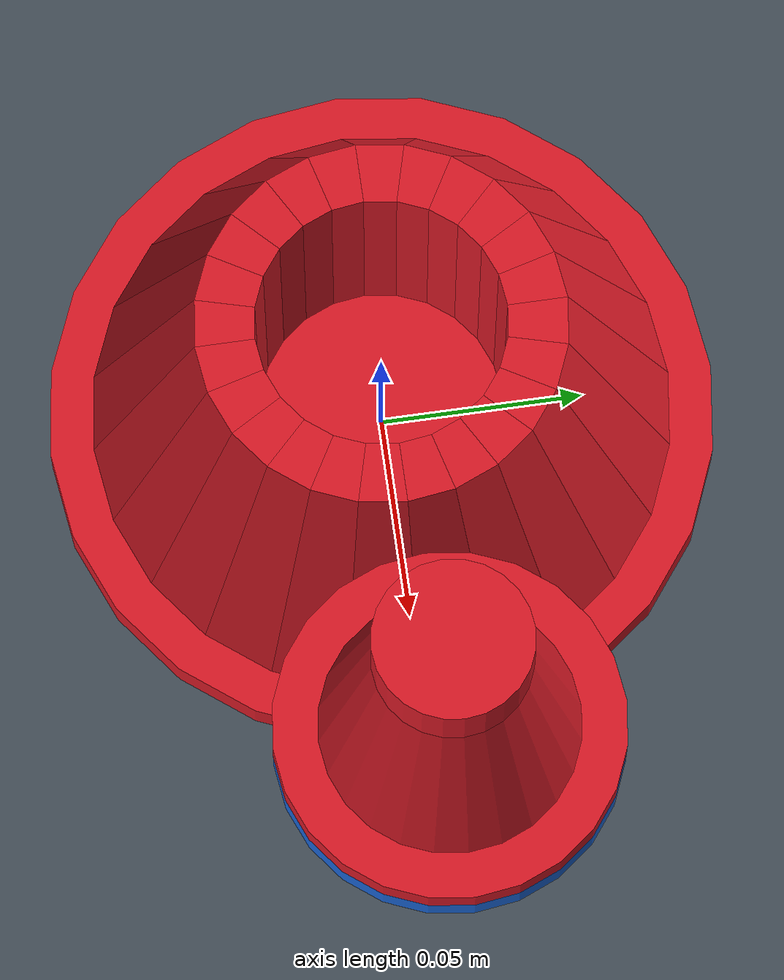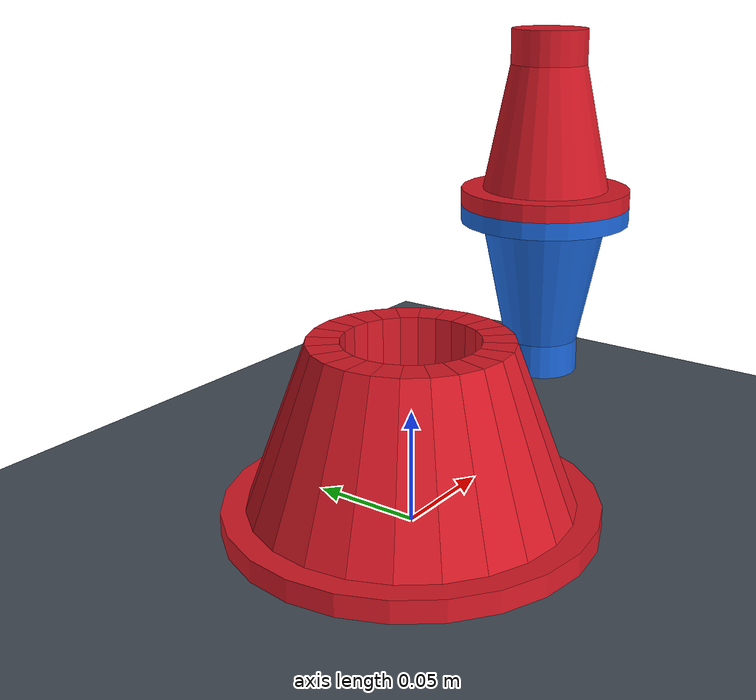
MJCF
<mujoco model="override_contact_fixture"><compiler angle="radian" /><option timestep=".002" gravity="0 0 -9.81" integrator="implicitfast" cone="elliptic" iterations="80" /><default><geom friction=".65 .002 .0001" solref=".01 1" /></default><visual><global offwidth="1200" offheight="900" /><headlight ambient=".5 .5 .5" diffuse=".7 .7 .7" /></visual><asset><mesh name="goal_wall_0" vertex="0.07125 0.0 0.01 0.06882221512309611 0.018440856963554603 0.01 0.03005 0.0 0.01 0.029026071079986504 0.007777512305330748 0.01 0.0444 0.0 0.0825 0.04288710668723463 0.011491565602551922 0.0825 0.03005 0.0 0.0825 0.029026071079986504 0.007777512305330748 0.0825" /><mesh name="goal_wall_1" vertex="0.06882221512309611 0.018440856963554603 0.01 0.06170431001964125 0.03562499999999999 0.01 0.029026071079986504 0.007777512305330748 0.01 0.026024063383722384 0.015024999999999998 0.01 0.04288710668723463 0.011491565602551922 0.0825 0.03845152792802908 0.022199999999999998 0.0825 0.029026071079986504 0.007777512305330748 0.0825 0.026024063383722384 0.015024999999999998 0.0825" /><mesh name="goal_wall_2" vertex="0.06170431001964125 0.03562499999999999 0.01 0.05038135815954151 0.0503813581595415 0.01 0.026024063383722384 0.015024999999999998 0.01 0.021248558774655753 0.02124855877465575 0.01 0.03845152792802908 0.022199999999999998 0.0825 0.03139554108468271 0.03139554108468271 0.0825 0.026024063383722384 0.015024999999999998 0.0825 0.021248558774655753 0.02124855877465575 0.0825" /><mesh name="goal_wall_3" vertex="0.05038135815954151 0.0503813581595415 0.01 0.035625000000000004 0.061704310019641245 0.01 0.021248558774655753 0.02124855877465575 0.01 0.015025000000000004 0.02602406338372238 0.01 0.03139554108468271 0.03139554108468271 0.0825 0.022200000000000004 0.038451527928029076 0.0825 0.021248558774655753 0.02124855877465575 0.0825 0.015025000000000004 0.02602406338372238 0.0825" /><mesh name="goal_wall_4" vertex="0.035625000000000004 0.061704310019641245 0.01 0.018440856963554603 0.06882221512309611 0.01 0.015025000000000004 0.02602406338372238 0.01 0.007777512305330748 0.029026071079986504 0.01 0.022200000000000004 0.038451527928029076 0.0825 0.011491565602551922 0.04288710668723463 0.0825 0.015025000000000004 0.02602406338372238 0.0825 0.007777512305330748 0.029026071079986504 0.0825" /><mesh name="goal_wall_5" vertex="0.018440856963554603 0.06882221512309611 0.01 4.362804221962445e-18 0.07125 0.01 0.007777512305330748 0.029026071079986504 0.01 1.8400318157188982e-18 0.03005 0.01 0.011491565602551922 0.04288710668723463 0.0825 2.718715894107124e-18 0.0444 0.0825 0.007777512305330748 0.029026071079986504 0.0825 1.8400318157188982e-18 0.03005 0.0825" /><mesh name="goal_wall_6" vertex="4.362804221962445e-18 0.07125 0.01 -0.018440856963554592 0.06882221512309611 0.01 1.8400318157188982e-18 0.03005 0.01 -0.007777512305330745 0.029026071079986504 0.01 2.718715894107124e-18 0.0444 0.0825 -0.011491565602551917 0.04288710668723463 0.0825 1.8400318157188982e-18 0.03005 0.0825 -0.007777512305330745 0.029026071079986504 0.0825" /><mesh name="goal_wall_7" vertex="-0.018440856963554592 0.06882221512309611 0.01 -0.03562499999999998 0.06170431001964125 0.01 -0.007777512305330745 0.029026071079986504 0.01 -0.015024999999999995 0.026024063383722384 0.01 -0.011491565602551917 0.04288710668723463 0.0825 -0.022199999999999994 0.03845152792802908 0.0825 -0.007777512305330745 0.029026071079986504 0.0825 -0.015024999999999995 0.026024063383722384 0.0825" /><mesh name="goal_wall_8" vertex="-0.03562499999999998 0.06170431001964125 0.01 -0.0503813581595415 0.05038135815954151 0.01 -0.015024999999999995 0.026024063383722384 0.01 -0.02124855877465575 0.021248558774655753 0.01 -0.022199999999999994 0.03845152792802908 0.0825 -0.03139554108468271 0.03139554108468271 0.0825 -0.015024999999999995 0.026024063383722384 0.0825 -0.02124855877465575 0.021248558774655753 0.0825" /><mesh name="goal_wall_9" vertex="-0.0503813581595415 0.05038135815954151 0.01 -0.06170431001964125 0.03562499999999999 0.01 -0.02124855877465575 0.021248558774655753 0.01 -0.026024063383722384 0.015024999999999998 0.01 -0.03139554108468271 0.03139554108468271 0.0825 -0.03845152792802908 0.022199999999999998 0.0825 -0.02124855877465575 0.021248558774655753 0.0825 -0.026024063383722384 0.015024999999999998 0.0825" /><mesh name="goal_wall_10" vertex="-0.06170431001964125 0.03562499999999999 0.01 -0.06882221512309611 0.01844085696355462 0.01 -0.026024063383722384 0.015024999999999998 0.01 -0.0290260710799865 0.007777512305330757 0.01 -0.03845152792802908 0.022199999999999998 0.0825 -0.04288710668723463 0.011491565602551934 0.0825 -0.026024063383722384 0.015024999999999998 0.0825 -0.0290260710799865 0.007777512305330757 0.0825" /><mesh name="goal_wall_11" vertex="-0.06882221512309611 0.01844085696355462 0.01 -0.07125 8.72560844392489e-18 0.01 -0.0290260710799865 0.007777512305330757 0.01 -0.03005 3.6800636314377964e-18 0.01 -0.04288710668723463 0.011491565602551934 0.0825 -0.0444 5.437431788214248e-18 0.0825 -0.0290260710799865 0.007777512305330757 0.0825 -0.03005 3.6800636314377964e-18 0.0825" /><mesh name="goal_wall_12" vertex="-0.07125 8.72560844392489e-18 0.01 -0.06882221512309611 -0.018440856963554606 0.01 -0.03005 3.6800636314377964e-18 0.01 -0.029026071079986504 -0.00777751230533075 0.01 -0.0444 5.437431788214248e-18 0.0825 -0.04288710668723463 -0.011491565602551924 0.0825 -0.03005 3.6800636314377964e-18 0.0825 -0.029026071079986504 -0.00777751230533075 0.0825" /><mesh name="goal_wall_13" vertex="-0.06882221512309611 -0.018440856963554606 0.01 -0.06170431001964126 -0.03562499999999998 0.01 -0.029026071079986504 -0.00777751230533075 0.01 -0.026024063383722387 -0.015024999999999993 0.01 -0.04288710668723463 -0.011491565602551924 0.0825 -0.03845152792802908 -0.02219999999999999 0.0825 -0.029026071079986504 -0.00777751230533075 0.0825 -0.026024063383722387 -0.015024999999999993 0.0825" /><mesh name="goal_wall_14" vertex="-0.06170431001964126 -0.03562499999999998 0.01 -0.050381358159541534 -0.05038135815954148 0.01 -0.026024063383722387 -0.015024999999999993 0.01 -0.021248558774655764 -0.021248558774655743 0.01 -0.03845152792802908 -0.02219999999999999 0.0825 -0.031395541084682725 -0.03139554108468269 0.0825 -0.026024063383722387 -0.015024999999999993 0.0825 -0.021248558774655764 -0.021248558774655743 0.0825" /><mesh name="goal_wall_15" vertex="-0.050381358159541534 -0.05038135815954148 0.01 -0.03562500000000003 -0.06170431001964123 0.01 -0.021248558774655764 -0.021248558774655743 0.01 -0.015025000000000014 -0.026024063383722373 0.01 -0.031395541084682725 -0.03139554108468269 0.0825 -0.022200000000000022 -0.03845152792802906 0.0825 -0.021248558774655764 -0.021248558774655743 0.0825 -0.015025000000000014 -0.026024063383722373 0.0825" /><mesh name="goal_wall_16" vertex="-0.03562500000000003 -0.06170431001964123 0.01 -0.018440856963554592 -0.06882221512309611 0.01 -0.015025000000000014 -0.026024063383722373 0.01 -0.007777512305330745 -0.029026071079986504 0.01 -0.022200000000000022 -0.03845152792802906 0.0825 -0.011491565602551917 -0.04288710668723463 0.0825 -0.015025000000000014 -0.026024063383722373 0.0825 -0.007777512305330745 -0.029026071079986504 0.0825" /><mesh name="goal_wall_17" vertex="-0.018440856963554592 -0.06882221512309611 0.01 -1.3088412665887336e-17 -0.07125 0.01 -0.007777512305330745 -0.029026071079986504 0.01 -5.520095447156694e-18 -0.03005 0.01 -0.011491565602551917 -0.04288710668723463 0.0825 -8.156147682321372e-18 -0.0444 0.0825 -0.007777512305330745 -0.029026071079986504 0.0825 -5.520095447156694e-18 -0.03005 0.0825" /><mesh name="goal_wall_18" vertex="-1.3088412665887336e-17 -0.07125 0.01 0.018440856963554568 -0.06882221512309612 0.01 -5.520095447156694e-18 -0.03005 0.01 0.007777512305330735 -0.029026071079986508 0.01 -8.156147682321372e-18 -0.0444 0.0825 0.011491565602551901 -0.04288710668723464 0.0825 -5.520095447156694e-18 -0.03005 0.0825 0.007777512305330735 -0.029026071079986508 0.0825" /><mesh name="goal_wall_19" vertex="0.018440856963554568 -0.06882221512309612 0.01 0.035625000000000004 -0.061704310019641245 0.01 0.007777512305330735 -0.029026071079986508 0.01 0.015025000000000004 -0.02602406338372238 0.01 0.011491565602551901 -0.04288710668723464 0.0825 0.022200000000000004 -0.038451527928029076 0.0825 0.007777512305330735 -0.029026071079986508 0.0825 0.015025000000000004 -0.02602406338372238 0.0825" /><mesh name="goal_wall_20" vertex="0.035625000000000004 -0.061704310019641245 0.01 0.05038135815954149 -0.05038135815954152 0.01 0.015025000000000004 -0.02602406338372238 0.01 0.021248558774655747 -0.021248558774655757 0.01 0.022200000000000004 -0.038451527928029076 0.0825 0.031395541084682704 -0.03139554108468272 0.0825 0.015025000000000004 -0.02602406338372238 0.0825 0.021248558774655747 -0.021248558774655757 0.0825" /><mesh name="goal_wall_21" vertex="0.05038135815954149 -0.05038135815954152 0.01 0.06170431001964123 -0.03562500000000003 0.01 0.021248558774655747 -0.021248558774655757 0.01 0.026024063383722373 -0.015025000000000014 0.01 0.031395541084682704 -0.03139554108468272 0.0825 0.03845152792802906 -0.022200000000000022 0.0825 0.021248558774655747 -0.021248558774655757 0.0825 0.026024063383722373 -0.015025000000000014 0.0825" /><mesh name="goal_wall_22" vertex="0.06170431001964123 -0.03562500000000003 0.01 0.0688222151230961 -0.01844085696355466 0.01 0.026024063383722373 -0.015025000000000014 0.01 0.029026071079986497 -0.007777512305330773 0.01 0.03845152792802906 -0.022200000000000022 0.0825 0.042887106687234625 -0.011491565602551958 0.0825 0.026024063383722373 -0.015025000000000014 0.0825 0.029026071079986497 -0.007777512305330773 0.0825" /><mesh name="goal_wall_23" vertex="0.0688222151230961 -0.01844085696355466 0.01 0.07125 -1.745121688784978e-17 0.01 0.029026071079986497 -0.007777512305330773 0.01 0.03005 -7.360127262875593e-18 0.01 0.042887106687234625 -0.011491565602551958 0.0825 0.0444 -1.0874863576428497e-17 0.0825 0.029026071079986497 -0.007777512305330773 0.0825 0.03005 -7.360127262875593e-18 0.0825" /><mesh name="pin_taper_1" vertex="0.0298 0.0 0.008 0.028784589623414236 0.007712807544055118 0.008 0.025807557032776273 0.014899999999999998 0.008 0.021071782079359117 0.021071782079359114 0.008 0.014900000000000004 0.02580755703277627 0.008 0.007712807544055125 0.028784589623414233 0.008 1.8247237307295563e-18 0.0298 0.008 -0.007712807544055115 0.028784589623414236 0.008 -0.014899999999999995 0.025807557032776273 0.008 -0.021071782079359114 0.021071782079359117 0.008 -0.025807557032776266 0.01490000000000001 0.008 -0.028784589623414233 0.007712807544055126 0.008 -0.0298 3.649447461459113e-18 0.008 -0.02878458962341424 -0.007712807544055107 0.008 -0.025807557032776277 -0.014899999999999993 0.008 -0.021071782079359128 -0.021071782079359103 0.008 -0.014900000000000014 -0.025807557032776263 0.008 -0.0077128075440551416 -0.02878458962341423 0.008 -5.4741711921886686e-18 -0.0298 0.008 0.007712807544055105 -0.02878458962341424 0.008 0.014899999999999981 -0.025807557032776283 0.008 0.02107178207935911 -0.02107178207935912 0.008 0.025807557032776263 -0.014900000000000014 0.008 0.02878458962341423 -0.007712807544055143 0.008 0.0178 0.0 0.066313 0.017193479707945415 0.0046069790028248694 0.066313 0.01541525218736301 0.008899999999999998 0.066313 0.012586500705120547 0.012586500705120544 0.066313 0.008900000000000002 0.015415252187363006 0.066313 0.004606979002824873 0.017193479707945415 0.066313 1.0899356512411443e-18 0.0178 0.066313 -0.004606979002824867 0.017193479707945415 0.066313 -0.008899999999999996 0.01541525218736301 0.066313 -0.012586500705120544 0.012586500705120547 0.066313 -0.015415252187363004 0.008900000000000005 0.066313 -0.017193479707945415 0.004606979002824874 0.066313 -0.0178 2.1798713024822886e-18 0.066313 -0.01719347970794542 -0.0046069790028248625 0.066313 -0.015415252187363011 -0.008899999999999996 0.066313 -0.012586500705120553 -0.012586500705120539 0.066313 -0.008900000000000009 -0.015415252187363003 0.066313 -0.004606979002824883 -0.01719347970794541 0.066313 -3.2698069537234327e-18 -0.0178 0.066313 0.004606979002824862 -0.01719347970794542 0.066313 0.008899999999999988 -0.015415252187363015 0.066313 0.012586500705120542 -0.01258650070512055 0.066313 0.015415252187363003 -0.008900000000000009 0.066313 0.01719347970794541 -0.004606979002824884 0.066313" /><mesh name="pin_taper_-1" vertex="0.0178 0.0 -0.066313 0.017193479707945415 0.0046069790028248694 -0.066313 0.01541525218736301 0.008899999999999998 -0.066313 0.012586500705120547 0.012586500705120544 -0.066313 0.008900000000000002 0.015415252187363006 -0.066313 0.004606979002824873 0.017193479707945415 -0.066313 1.0899356512411443e-18 0.0178 -0.066313 -0.004606979002824867 0.017193479707945415 -0.066313 -0.008899999999999996 0.01541525218736301 -0.066313 -0.012586500705120544 0.012586500705120547 -0.066313 -0.015415252187363004 0.008900000000000005 -0.066313 -0.017193479707945415 0.004606979002824874 -0.066313 -0.0178 2.1798713024822886e-18 -0.066313 -0.01719347970794542 -0.0046069790028248625 -0.066313 -0.015415252187363011 -0.008899999999999996 -0.066313 -0.012586500705120553 -0.012586500705120539 -0.066313 -0.008900000000000009 -0.015415252187363003 -0.066313 -0.004606979002824883 -0.01719347970794541 -0.066313 -3.2698069537234327e-18 -0.0178 -0.066313 0.004606979002824862 -0.01719347970794542 -0.066313 0.008899999999999988 -0.015415252187363015 -0.066313 0.012586500705120542 -0.01258650070512055 -0.066313 0.015415252187363003 -0.008900000000000009 -0.066313 0.01719347970794541 -0.004606979002824884 -0.066313 0.0298 0.0 -0.008 0.028784589623414236 0.007712807544055118 -0.008 0.025807557032776273 0.014899999999999998 -0.008 0.021071782079359117 0.021071782079359114 -0.008 0.014900000000000004 0.02580755703277627 -0.008 0.007712807544055125 0.028784589623414233 -0.008 1.8247237307295563e-18 0.0298 -0.008 -0.007712807544055115 0.028784589623414236 -0.008 -0.014899999999999995 0.025807557032776273 -0.008 -0.021071782079359114 0.021071782079359117 -0.008 -0.025807557032776266 0.01490000000000001 -0.008 -0.028784589623414233 0.007712807544055126 -0.008 -0.0298 3.649447461459113e-18 -0.008 -0.02878458962341424 -0.007712807544055107 -0.008 -0.025807557032776277 -0.014899999999999993 -0.008 -0.021071782079359128 -0.021071782079359103 -0.008 -0.014900000000000014 -0.025807557032776263 -0.008 -0.0077128075440551416 -0.02878458962341423 -0.008 -5.4741711921886686e-18 -0.0298 -0.008 0.007712807544055105 -0.02878458962341424 -0.008 0.014899999999999981 -0.025807557032776283 -0.008 0.02107178207935911 -0.02107178207935912 -0.008 0.025807557032776263 -0.014900000000000014 -0.008 0.02878458962341423 -0.007712807544055143 -0.008" /></asset><worldbody><geom name="floor" priority="1" type="plane" size="4 4 .1" rgba=".26 .3 .34 1" friction="0.65 .002 .0001" /><light pos="0 0 2" dir="0 0 -1" /><body name="goal" pos="0 0 0"><geom name="goal_bottom" type="cylinder" pos="0 0 0.005" size=".0819 .005" rgba=".85 .1 .15 1" /><geom name="goal_wall_0" type="mesh" mesh="goal_wall_0" mass="0.012499999999999999" rgba=".85 .1 .15 1" /><geom name="goal_wall_1" type="mesh" mesh="goal_wall_1" mass="0.012499999999999999" rgba=".85 .1 .15 1" /><geom name="goal_wall_2" type="mesh" mesh="goal_wall_2" mass="0.012499999999999999" rgba=".85 .1 .15 1" /><geom name="goal_wall_3" type="mesh" mesh="goal_wall_3" mass="0.012499999999999999" rgba=".85 .1 .15 1" /><geom name="goal_wall_4" type="mesh" mesh="goal_wall_4" mass="0.012499999999999999" rgba=".85 .1 .15 1" /><geom name="goal_wall_5" type="mesh" mesh="goal_wall_5" mass="0.012499999999999999" rgba=".85 .1 .15 1" /><geom name="goal_wall_6" type="mesh" mesh="goal_wall_6" mass="0.012499999999999999" rgba=".85 .1 .15 1" /><geom name="goal_wall_7" type="mesh" mesh="goal_wall_7" mass="0.012499999999999999" rgba=".85 .1 .15 1" /><geom name="goal_wall_8" type="mesh" mesh="goal_wall_8" mass="0.012499999999999999" rgba=".85 .1 .15 1" /><geom name="goal_wall_9" type="mesh" mesh="goal_wall_9" mass="0.012499999999999999" rgba=".85 .1 .15 1" /><geom name="goal_wall_10" type="mesh" mesh="goal_wall_10" mass="0.012499999999999999" rgba=".85 .1 .15 1" /><geom name="goal_wall_11" type="mesh" mesh="goal_wall_11" mass="0.012499999999999999" rgba=".85 .1 .15 1" /><geom name="goal_wall_12" type="mesh" mesh="goal_wall_12" mass="0.012499999999999999" rgba=".85 .1 .15 1" /><geom name="goal_wall_13" type="mesh" mesh="goal_wall_13" mass="0.012499999999999999" rgba=".85 .1 .15 1" /><geom name="goal_wall_14" type="mesh" mesh="goal_wall_14" mass="0.012499999999999999" rgba=".85 .1 .15 1" /><geom name="goal_wall_15" type="mesh" mesh="goal_wall_15" mass="0.012499999999999999" rgba=".85 .1 .15 1" /><geom name="goal_wall_16" type="mesh" mesh="goal_wall_16" mass="0.012499999999999999" rgba=".85 .1 .15 1" /><geom name="goal_wall_17" type="mesh" mesh="goal_wall_17" mass="0.012499999999999999" rgba=".85 .1 .15 1" /><geom name="goal_wall_18" type="mesh" mesh="goal_wall_18" mass="0.012499999999999999" rgba=".85 .1 .15 1" /><geom name="goal_wall_19" type="mesh" mesh="goal_wall_19" mass="0.012499999999999999" rgba=".85 .1 .15 1" /><geom name="goal_wall_20" type="mesh" mesh="goal_wall_20" mass="0.012499999999999999" rgba=".85 .1 .15 1" /><geom name="goal_wall_21" type="mesh" mesh="goal_wall_21" mass="0.012499999999999999" rgba=".85 .1 .15 1" /><geom name="goal_wall_22" type="mesh" mesh="goal_wall_22" mass="0.012499999999999999" rgba=".85 .1 .15 1" /><geom name="goal_wall_23" type="mesh" mesh="goal_wall_23" mass="0.012499999999999999" rgba=".85 .1 .15 1" /></body><body name="pin" pos="0.11 0 0.12"><freejoint name="pin_free" /><geom name="pin_taper_1" type="mesh" mesh="pin_taper_1" mass="0.038" rgba=".85 .1 .15 1" /><geom name="pin_tip_1" type="cylinder" pos="0 0 0.0744065" size="0.0178 0.008093500000000003" mass="0.008" rgba=".85 .1 .15 1" /><geom name="pin_flange_1" type="cylinder" pos="0 0 0.004" size="0.04015 .004" mass="0.012" rgba=".85 .1 .15 1" /><geom name="pin_taper_-1" type="mesh" mesh="pin_taper_-1" mass="0.038" rgba=".1 .4 .85 1" /><geom name="pin_tip_-1" type="cylinder" pos="0 0 -0.0744065" size="0.0178 0.008093500000000003" mass="0.008" rgba=".1 .4 .85 1" /><geom name="pin_flange_-1" type="cylinder" pos="0 0 -0.004" size="0.04015 .004" mass="0.012" rgba=".1 .4 .85 1" /></body></worldbody></mujoco>
